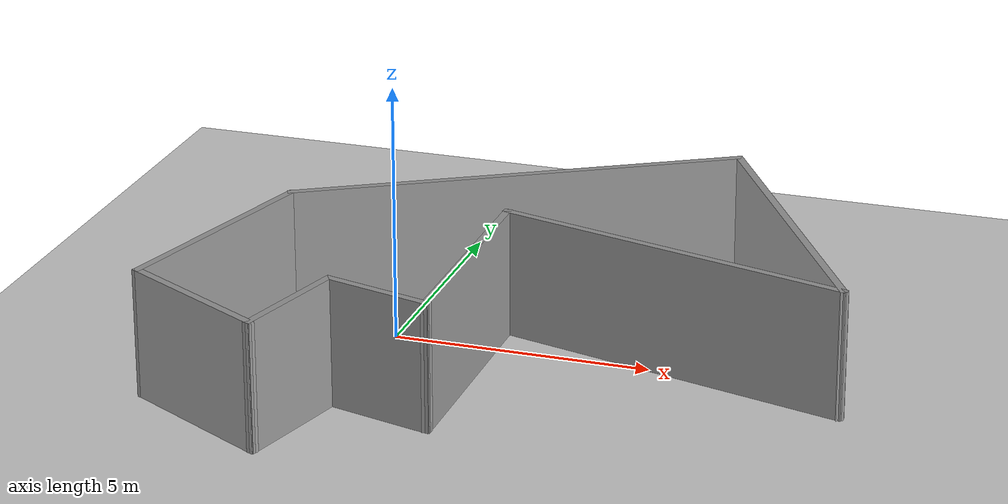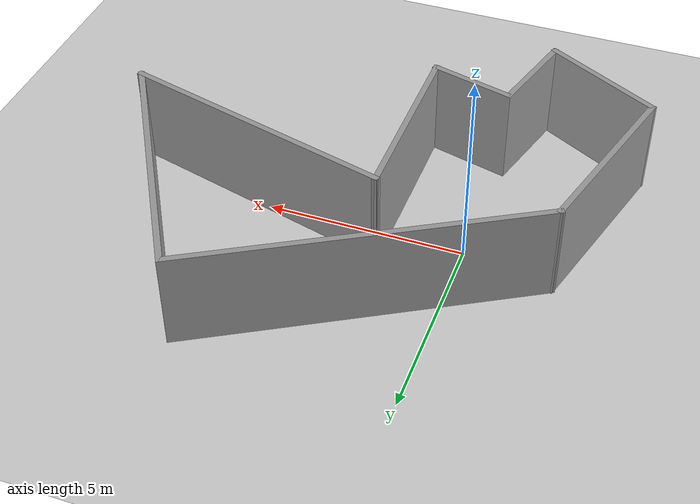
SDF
<sdf version="1.7">
 <world name="default">
  <light name="sun" type="directional">
   <pose>0 0 10 0 -0 0</pose>
   <diffuse>0.8 0.8 0.8 1</diffuse>
   <specular>0.2 0.2 0.2 1</specular>
   <attenuation>
    <range>1000</range>
    <constant>0.9</constant>
    <linear>0.01</linear>
    <quadratic>0.001</quadratic>
   </attenuation>
   <direction>-0.5 0.1 -0.9</direction>
   <spot><inner_angle>0</inner_angle><outer_angle>0</outer_angle><falloff>0</falloff></spot>
  </light>
  <model name="ground_plane">
   <static>1</static>
   <link name="link">
    <collision name="collision">
     <geometry><plane><normal>0 0 1</normal><size>100 100</size></plane></geometry>
     <surface><friction><ode><mu>100</mu><mu2>50</mu2></ode></friction></surface>
    </collision>
    <visual name="visual">
     <cast_shadows>0</cast_shadows>
     <geometry><plane><normal>0 0 1</normal><size>100 100</size></plane></geometry>
     <material>
      <script><uri>file://media/materials/scripts/gazebo.material</uri><name>Gazebo/Grey</name></script>
     </material>
    </visual>
   </link>
  </model>
  <gravity>0 0 -9.8</gravity>
  <magnetic_field>6e-06 2.3e-05 -4.2e-05</magnetic_field>
  <atmosphere type="adiabatic"/>
  <physics type="ode">
   <max_step_size>0.001</max_step_size>
   <real_time_factor>1</real_time_factor>
   <real_time_update_rate>1000</real_time_update_rate>
  </physics>
  <scene><ambient>0.4 0.4 0.4 1</ambient><background>0.7 0.7 0.7 1</background><shadows>1</shadows></scene>
  <audio><device>default</device></audio>
  <spherical_coordinates>
   <surface_model>EARTH_WGS84</surface_model>
   <latitude_deg>0</latitude_deg>
   <longitude_deg>0</longitude_deg>
   <elevation>0</elevation>
   <heading_deg>0</heading_deg>
  </spherical_coordinates>
  <model name="dolly">
   <link name="base_footprint">
    <inertial>
     <pose>-0.110938 0 0.159063 0 -0 0</pose>
     <mass>1.6</mass>
     <inertia>
      <ixx>0.0318961</ixx>
      <ixy>0</ixy>
      <ixz>0.00676641</ixz>
      <iyy>0.0650672</iyy>
      <iyz>0</iyz>
      <izz>0.0631711</izz>
     </inertia>
    </inertial>
    <collision name="base_footprint_fixed_joint_lump__base_collision">
     <pose>0 0 0.135 0 -0 0</pose>
     <geometry><box><size>0.75 0.4 0.1</size></box></geometry>
    </collision>
    <collision name="base_footprint_fixed_joint_lump__camera_collision_1">
     <pose>-0.35 0 0.145 0 -0 3.14</pose>
     <geometry><box><size>0.1 0.1 0.05</size></box></geometry>
    </collision>
    <collision name="base_footprint_fixed_joint_lump__lidar_collision_2">
     <pose>-0.285 0 0.21 0 -0 1.57</pose>
     <geometry><box><size>0.1 0.1 0.1</size></box></geometry>
    </collision>
    <visual name="base_footprint_fixed_joint_lump__base_visual">
     <pose>0 0 0.135 0 -0 0</pose>
     <geometry><box><size>0.75 0.4 0.1</size></box></geometry>
     <material>
      <script><name>Gazebo/White</name><uri>file://media/materials/scripts/gazebo.material</uri></script>
     </material>
    </visual>
    <visual name="base_footprint_fixed_joint_lump__camera_visual_1">
     <pose>-0.35 0 0.145 0 -0 3.14</pose>
     <geometry><box><size>0.1 0.1 0.05</size></box></geometry>
     <material>
      <script><name>Gazebo/Blue</name><uri>file://media/materials/scripts/gazebo.material</uri></script>
     </material>
    </visual>
    <visual name="base_footprint_fixed_joint_lump__lidar_visual_2">
     <pose>-0.285 0 0.21 0 -0 1.57</pose>
     <geometry><cylinder><length>0.05</length><radius>0.1</radius></cylinder></geometry>
     <material>
      <script><name>Gazebo/DarkGrey</name><uri>file://media/materials/scripts/gazebo.material</uri></script>
     </material>
    </visual>
    <sensor name="camera1" type="camera">
     <update_rate>30</update_rate>
     <camera name="head">
      <horizontal_fov>1.39626</horizontal_fov>
      <image><width>800</width><height>800</height><format>R8G8B8</format></image>
      <clip><near>0.02</near><far>300</far></clip>
     </camera>
     <plugin name="camera_controller" filename="libgazebo_ros_camera.so">
      <alwaysOn>1</alwaysOn>
      <updateRate>0.0</updateRate>
      <cameraName>/camera</cameraName>
      <imageTopicName>image_raw</imageTopicName>
      <cameraInfoTopicName>camera_info</cameraInfoTopicName>
      <frameName>camera_link</frameName>
      <hackBaseline>0.07</hackBaseline>
     </plugin>
     <pose>-0.35 0 0.145 0 -0 3.14</pose>
    </sensor>
    <sensor name="imu_sensor" type="imu">
     <always_on>1</always_on>
     <update_rate>100</update_rate>
     <visualize>1</visualize>
     <plugin name="imu_plugin" filename="libgazebo_ros_imu_sensor.so">
      <ros><remapping>~/out:=imu</remapping></ros>
      <topicName>imu</topicName>
      <bodyName>imu_link</bodyName>
      <updateRateHZ>10.0</updateRateHZ>
      <xyzOffset>0 0 0</xyzOffset>
      <rpyOffset>0 0 0</rpyOffset>
      <frameName>imu_link</frameName>
      <initialOrientationAsReference>0</initialOrientationAsReference>
     </plugin>
     <pose>0 0 0.135 0 -0 0</pose>
    </sensor>
    <sensor name="gazebo_lidar" type="ray">
     <visualize>1</visualize>
     <update_rate>12</update_rate>
     <plugin name="gazebo_lidar" filename="libgazebo_ros_ray_sensor.so">
      <ros><remapping>~/out:=scan</remapping></ros>
      <output_type>sensor_msgs/LaserScan</output_type>
      <frame_name>lidar</frame_name>
     </plugin>
     <ray>
      <scan>
       <horizontal>
        <samples>360</samples>
        <resolution>1</resolution>
        <min_angle>0</min_angle>
        <max_angle>3.14</max_angle>
       </horizontal>
       <vertical><samples>1</samples><min_angle>0</min_angle><max_angle>0</max_angle></vertical>
      </scan>
      <range><min>0.12</min><max>3.5</max><resolution>0.015</resolution></range>
     </ray>
     <pose>-0.285 0 0.21 0 -0 1.57</pose>
    </sensor>
   </link>
   <joint name="caster_joint" type="revolute">
    <pose relative_to="base_footprint">-0.3 0 0.065 0 -0 0</pose>
    <parent>base_footprint</parent>
    <child>caster</child>
    <axis>
     <xyz>0 0 1</xyz>
     <limit><lower>-1e+16</lower><upper>1e+16</upper></limit>
     <dynamics><spring_reference>0</spring_reference><spring_stiffness>0</spring_stiffness></dynamics>
    </axis>
   </joint>
   <link name="caster">
    <pose relative_to="caster_joint">0 0 0 0 -0 0</pose>
    <inertial>
     <mass>1</mass>
     <inertia><ixx>0.01</ixx><ixy>0</ixy><ixz>0</ixz><iyy>0.01</iyy><iyz>0</iyz><izz>0.01</izz></inertia>
    </inertial>
    <collision name="caster_collision"><geometry><sphere><radius>0.08</radius></sphere></geometry></collision>
    <visual name="caster_visual">
     <geometry><sphere><radius>0.08</radius></sphere></geometry>
     <material>
      <script><name>Gazebo/Blue</name><uri>file://media/materials/scripts/gazebo.material</uri></script>
     </material>
    </visual>
   </link>
   <joint name="wheel_left_joint" type="revolute">
    <pose relative_to="base_footprint">0.2 -0.25 0.135 1.57 -0 0</pose>
    <parent>base_footprint</parent>
    <child>wheel_left_link</child>
    <axis>
     <xyz>0 0 1</xyz>
     <limit><lower>-1e+16</lower><upper>1e+16</upper></limit>
     <dynamics><spring_reference>0</spring_reference><spring_stiffness>0</spring_stiffness></dynamics>
    </axis>
   </joint>
   <link name="wheel_left_link">
    <pose relative_to="wheel_left_joint">0 0 0 0 -0 0</pose>
    <inertial>
     <mass>2</mass>
     <inertia><ixx>0.01</ixx><ixy>0</ixy><ixz>0</ixz><iyy>0.01</iyy><iyz>0</iyz><izz>0.01</izz></inertia>
    </inertial>
    <collision name="wheel_left_link_collision">
     <geometry><cylinder><length>0.1</length><radius>0.15</radius></cylinder></geometry>
    </collision>
    <visual name="wheel_left_link_visual">
     <geometry><cylinder><length>0.1</length><radius>0.15</radius></cylinder></geometry>
     <material>
      <script><name>Gazebo/Red</name><uri>file://media/materials/scripts/gazebo.material</uri></script>
     </material>
    </visual>
   </link>
   <joint name="wheel_right_joint" type="revolute">
    <pose relative_to="base_footprint">0.2 0.25 0.135 1.57 -0 0</pose>
    <parent>base_footprint</parent>
    <child>wheel_right_link</child>
    <axis>
     <xyz>0 0 1</xyz>
     <limit><lower>-1e+16</lower><upper>1e+16</upper></limit>
     <dynamics><spring_reference>0</spring_reference><spring_stiffness>0</spring_stiffness></dynamics>
    </axis>
   </joint>
   <link name="wheel_right_link">
    <pose relative_to="wheel_right_joint">0 0 0 0 -0 0</pose>
    <inertial>
     <mass>2</mass>
     <inertia><ixx>0.01</ixx><ixy>0</ixy><ixz>0</ixz><iyy>0.01</iyy><iyz>0</iyz><izz>0.01</izz></inertia>
    </inertial>
    <collision name="wheel_right_link_collision">
     <geometry><cylinder><length>0.1</length><radius>0.15</radius></cylinder></geometry>
    </collision>
    <visual name="wheel_right_link_visual">
     <geometry><cylinder><length>0.1</length><radius>0.15</radius></cylinder></geometry>
     <material>
      <script><name>Gazebo/Red</name><uri>file://media/materials/scripts/gazebo.material</uri></script>
     </material>
    </visual>
   </link>
   <static>0</static>
   <plugin name="gazebo_base_controller" filename="libgazebo_ros_diff_drive.so">
    <odometry_frame>odom</odometry_frame>
    <commandTopic>cmd_vel</commandTopic>
    <publish_odom>1</publish_odom>
    <publish_odom_tf>1</publish_odom_tf>
    <update_rate>15.0</update_rate>
    <left_joint>wheel_left_joint</left_joint>
    <right_joint>wheel_right_joint</right_joint>
    <wheel_separation>0.5</wheel_separation>
    <wheel_diameter>0.3</wheel_diameter>
    <max_wheel_acceleration>0.7</max_wheel_acceleration>
    <max_wheel_torque>8</max_wheel_torque>
   </plugin>
   <pose>0.005125 0.004889 0.015024 3e-06 -7.9e-05 -0.023153</pose>
  </model>
  <model name="deneme">
   <pose>2.67356 -0.277808 0 0 -0 0</pose>
   <link name="Wall_0">
    <collision name="Wall_0_Collision">
     <geometry><box><size>4.75 0.15 2.5</size></box></geometry>
     <pose>0 0 1.25 0 -0 0</pose>
    </collision>
    <visual name="Wall_0_Visual">
     <pose>0 0 1.25 0 -0 0</pose>
     <geometry><box><size>4.75 0.15 2.5</size></box></geometry>
     <material>
      <script><uri>file://media/materials/scripts/gazebo.material</uri><name>Gazebo/Grey</name></script>
      <ambient>1 1 1 1</ambient>
     </material>
     <meta><layer>0</layer></meta>
    </visual>
    <pose>-5.54487 -1.43631 0 0 -0 1.309</pose>
   </link>
   <link name="Wall_1">
    <collision name="Wall_1_Collision">
     <geometry><box><size>9 0.15 2.5</size></box></geometry>
     <pose>0 0 1.25 0 -0 0</pose>
    </collision>
    <visual name="Wall_1_Visual">
     <pose>0 0 1.25 0 -0 0</pose>
     <geometry><box><size>9 0.15 2.5</size></box></geometry>
     <material>
      <script><uri>file://media/materials/scripts/gazebo.material</uri><name>Gazebo/Grey</name></script>
      <ambient>1 1 1 1</ambient>
     </material>
     <meta><layer>0</layer></meta>
    </visual>
    <pose>-1.11743 2.99782 0 0 -0 0.523599</pose>
   </link>
   <link name="Wall_2">
    <collision name="Wall_2_Collision">
     <geometry><box><size>7 0.15 2.5</size></box></geometry>
     <pose>0 0 1.25 0 -0 0</pose>
    </collision>
    <visual name="Wall_2_Visual">
     <pose>0 0 1.25 0 -0 0</pose>
     <geometry><box><size>7 0.15 2.5</size></box></geometry>
     <material>
      <script><uri>file://media/materials/scripts/gazebo.material</uri><name>Gazebo/Grey</name></script>
      <ambient>1 1 1 1</ambient>
     </material>
     <meta><layer>0</layer></meta>
    </visual>
    <pose>4.42723 2.24418 0 0 -0 -1.0472</pose>
   </link>
   <link name="Wall_3">
    <collision name="Wall_3_Collision">
     <geometry><box><size>7.25 0.15 2.5</size></box></geometry>
     <pose>0 0 1.25 0 -0 0</pose>
    </collision>
    <visual name="Wall_3_Visual">
     <pose>0 0 1.25 0 -0 0</pose>
     <geometry><box><size>7.25 0.15 2.5</size></box></geometry>
     <material>
      <script><uri>file://media/materials/scripts/gazebo.material</uri><name>Gazebo/Grey</name></script>
      <ambient>1 1 1 1</ambient>
     </material>
     <meta><layer>0</layer></meta>
    </visual>
    <pose>2.7107 0.196854 0 0 -0 2.87979</pose>
   </link>
   <link name="Wall_4">
    <collision name="Wall_4_Collision">
     <geometry><box><size>4.75 0.15 2.5</size></box></geometry>
     <pose>0 0 1.25 0 -0 0</pose>
    </collision>
    <visual name="Wall_4_Visual">
     <pose>0 0 1.25 0 -0 0</pose>
     <geometry><box><size>4.75 0.15 2.5</size></box></geometry>
     <material>
      <script><uri>file://media/materials/scripts/gazebo.material</uri><name>Gazebo/Grey</name></script>
      <ambient>1 1 1 1</ambient>
     </material>
     <meta><layer>0</layer></meta>
    </visual>
    <pose>-0.718338 -1.18434 0 0 -0 -1.5708</pose>
   </link>
   <link name="Wall_5">
    <collision name="Wall_5_Collision">
     <geometry><box><size>2.25 0.15 2.5</size></box></geometry>
     <pose>0 0 1.25 0 -0 0</pose>
    </collision>
    <visual name="Wall_5_Visual">
     <pose>0 0 1.25 0 -0 0</pose>
     <geometry><box><size>2.25 0.15 2.5</size></box></geometry>
     <material>
      <script><uri>file://media/materials/scripts/gazebo.material</uri><name>Gazebo/Grey</name></script>
      <ambient>1 1 1 1</ambient>
     </material>
     <meta><layer>0</layer></meta>
    </visual>
    <pose>-1.73256 -3.21258 0 0 -0 2.87979</pose>
   </link>
   <link name="Wall_6">
    <collision name="Wall_6_Collision">
     <geometry><box><size>2.5 0.15 2.5</size></box></geometry>
     <pose>0 0 1.25 0 -0 0</pose>
    </collision>
    <visual name="Wall_6_Visual">
     <pose>0 0 1.25 0 -0 0</pose>
     <geometry><box><size>2.5 0.15 2.5</size></box></geometry>
     <material>
      <script><uri>file://media/materials/scripts/gazebo.material</uri><name>Gazebo/Grey</name></script>
      <ambient>1 1 1 1</ambient>
     </material>
     <meta><layer>0</layer></meta>
    </visual>
    <pose>-3.0509 -4.07578 0 0 -0 -1.8326</pose>
   </link>
   <link name="Wall_7">
    <collision name="Wall_7_Collision">
     <geometry><box><size>3.33877 0.15 2.5</size></box></geometry>
     <pose>0 0 1.25 0 -0 0</pose>
    </collision>
    <visual name="Wall_7_Visual">
     <pose>0 0 1.25 0 -0 0</pose>
     <geometry><box><size>3.33877 0.15 2.5</size></box></geometry>
     <material>
      <script><uri>file://media/materials/scripts/gazebo.material</uri><name>Gazebo/Grey</name></script>
      <ambient>1 1 1 1</ambient>
     </material>
     <meta><layer>0</layer></meta>
    </visual>
    <pose>-4.74758 -4.43434 0 0 -0 2.63299</pose>
   </link>
   <static>1</static>
  </model>
 </world>
</sdf>
